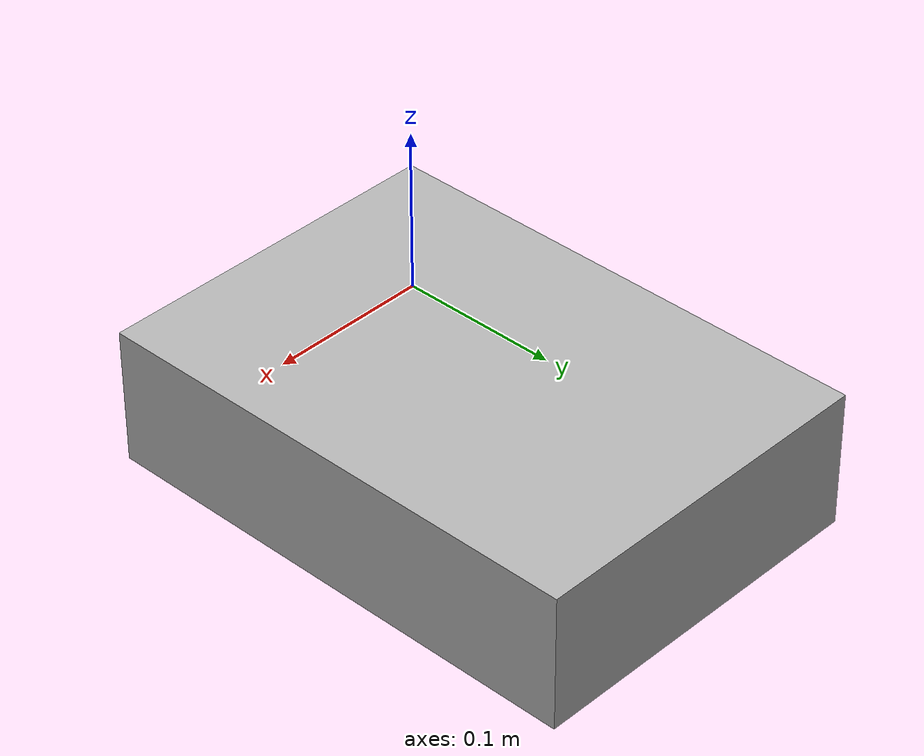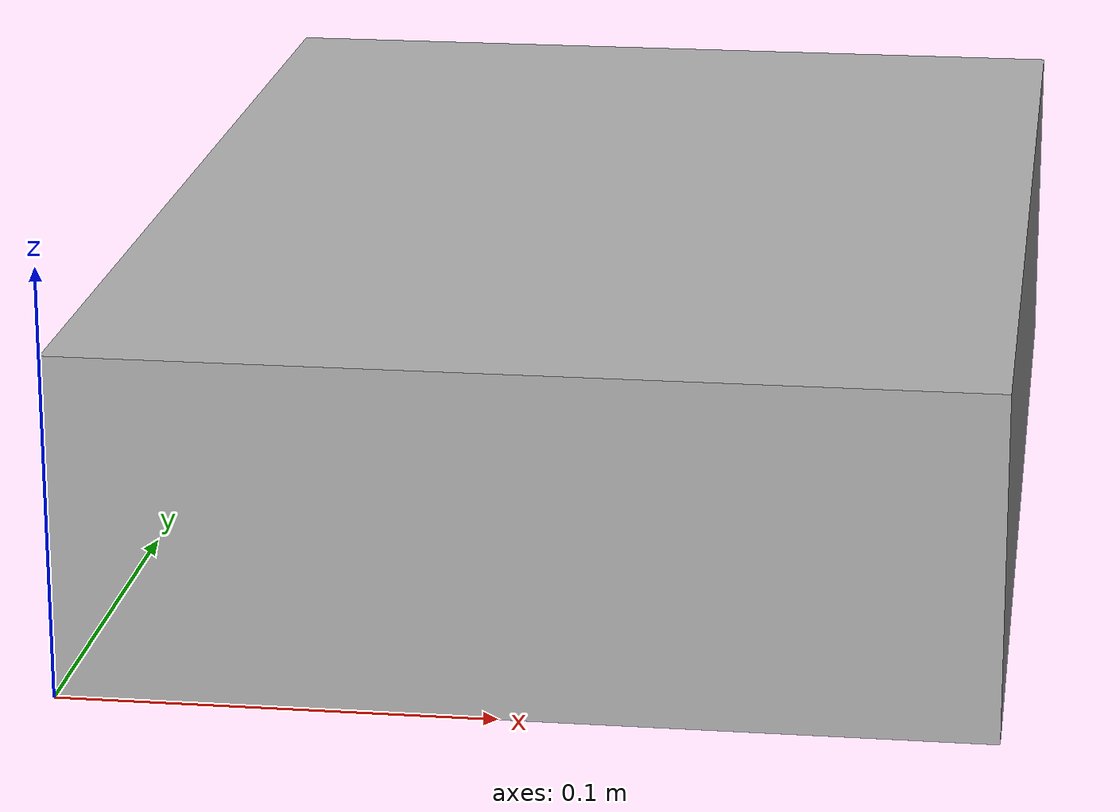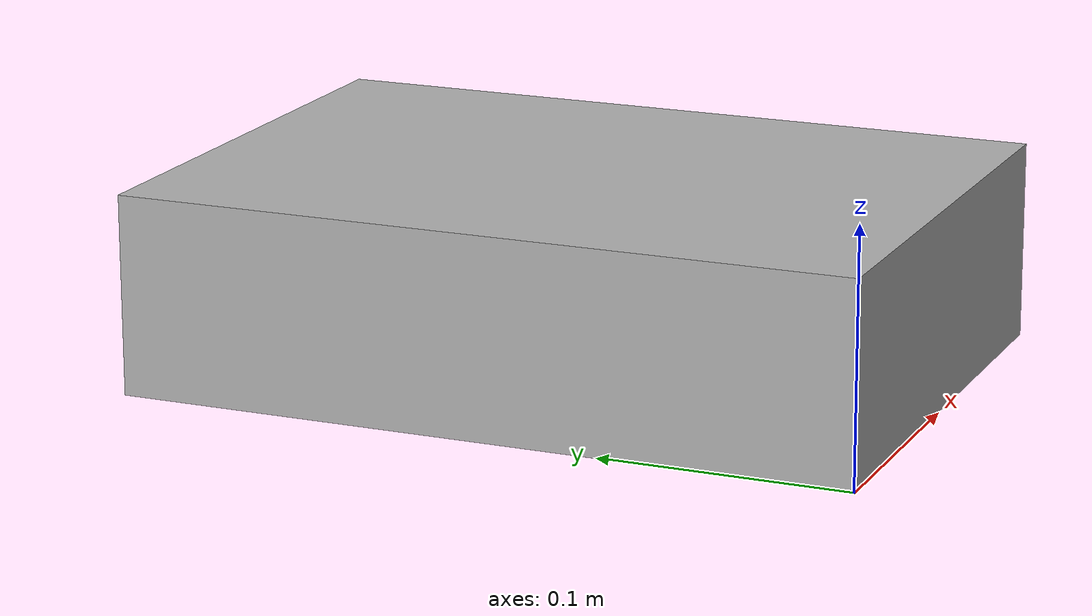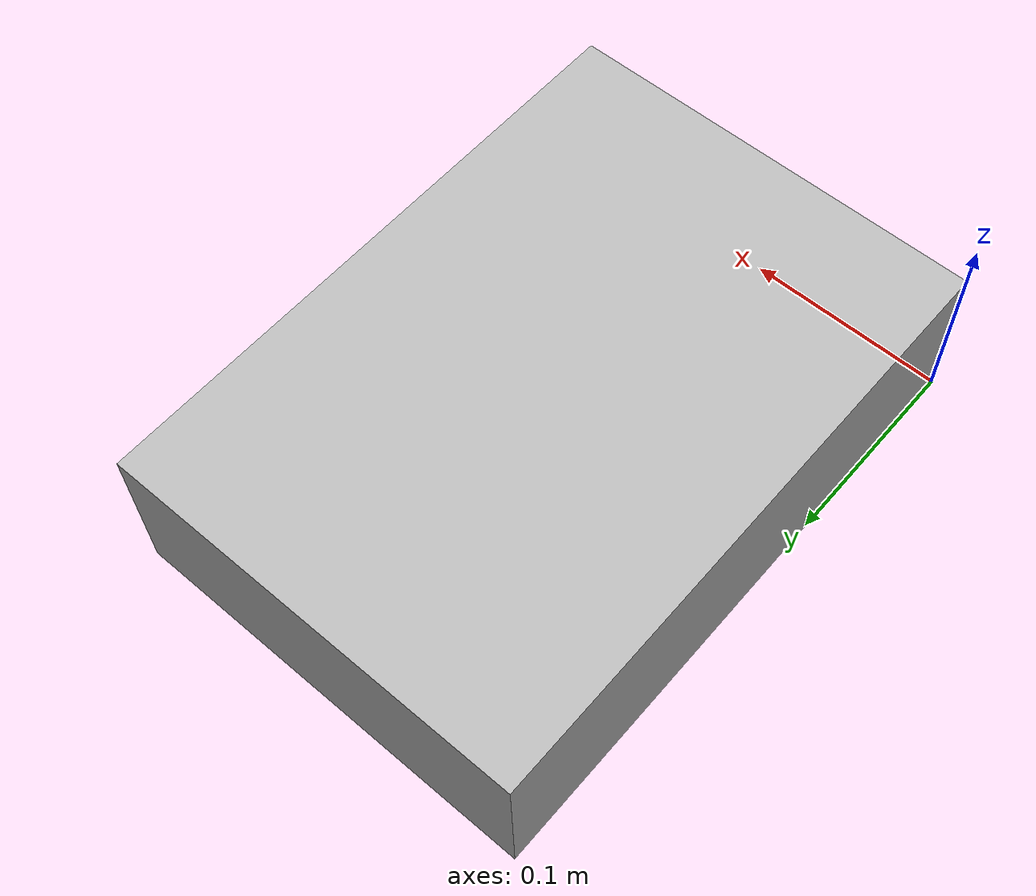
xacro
<?xml version="1.0" ?>
<robot name="8cm_height" xmlns:xacro="http://www.ros.org/wiki/xacro">

<xacro:include filename="$(find 8cm_height_description)/urdf/materials.xacro" />
<xacro:include filename="$(find 8cm_height_description)/urdf/8cm_height.trans" />
<xacro:include filename="$(find 8cm_height_description)/urdf/8cm_height.gazebo" />
<link name="base_link">
  <inertial>
    <origin xyz="0.105 0.14849999999999997 0.04" rpy="0 0 0"/>
    <mass value="39.16835999999999"/>
    <inertia ixx="0.308807" iyy="0.164834" izz="0.431861" ixy="-0.0" iyz="0.0" ixz="-0.0"/>
  </inertial>
  <visual>
    <origin xyz="0 0 0" rpy="0 0 0"/>
    <geometry>
      <mesh filename="package://8cm_height_description/meshes/base_link.stl" scale="0.001 0.001 0.001"/>
    </geometry>
    <material name="silver"/>
  </visual>
  <collision>
    <origin xyz="0 0 0" rpy="0 0 0"/>
    <geometry>
      <mesh filename="package://8cm_height_description/meshes/base_link.stl" scale="0.001 0.001 0.001"/>
    </geometry>
  </collision>
</link>

</robot>

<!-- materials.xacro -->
<robot name="8cm_height" xmlns:xacro="http://www.ros.org/wiki/xacro" >

<material name="silver">
  <color rgba="0.700 0.700 0.700 1.000"/>
</material>

</robot>

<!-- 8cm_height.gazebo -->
<robot name="8cm_height" xmlns:xacro="http://www.ros.org/wiki/xacro" >

<xacro:property name="body_color" value="Gazebo/Silver" />

<gazebo>
  <plugin name="control" filename="libgazebo_ros_control.so"/>
</gazebo>
<gazebo reference="base_link">
  <material>${body_color}</material>
  <mu1>0.2</mu1>
  <mu2>0.2</mu2>
  <selfCollide>true</selfCollide>
  <gravity>true</gravity>
</gazebo>

</robot>
